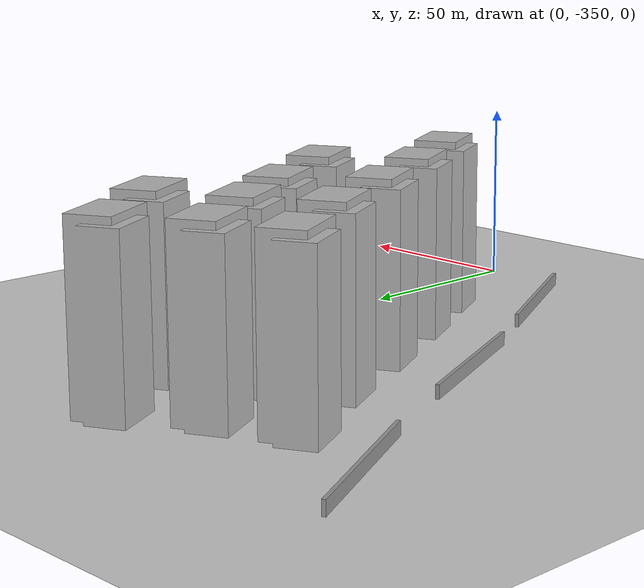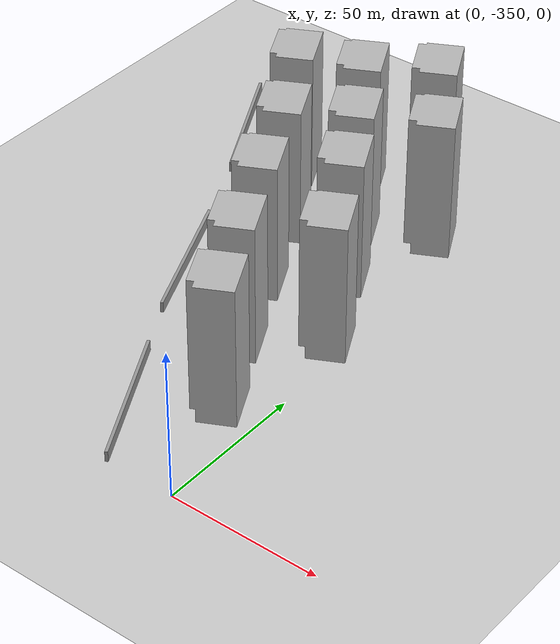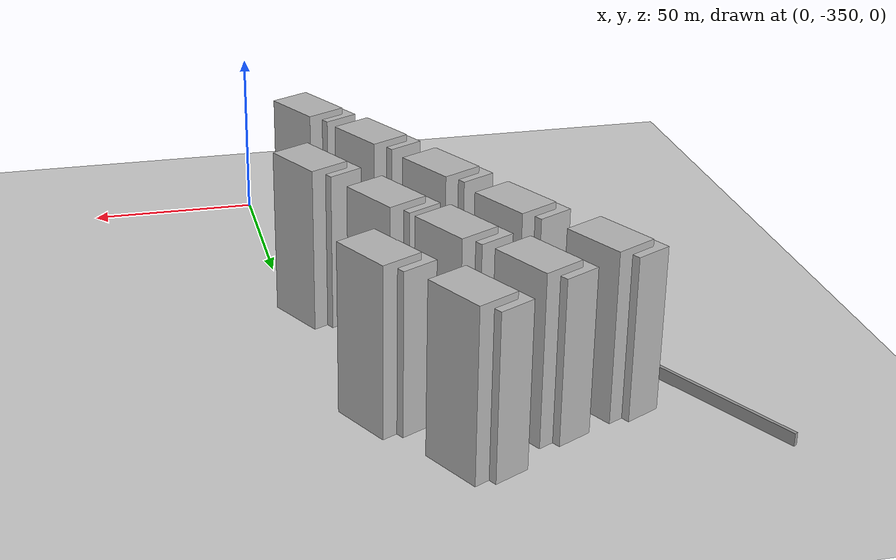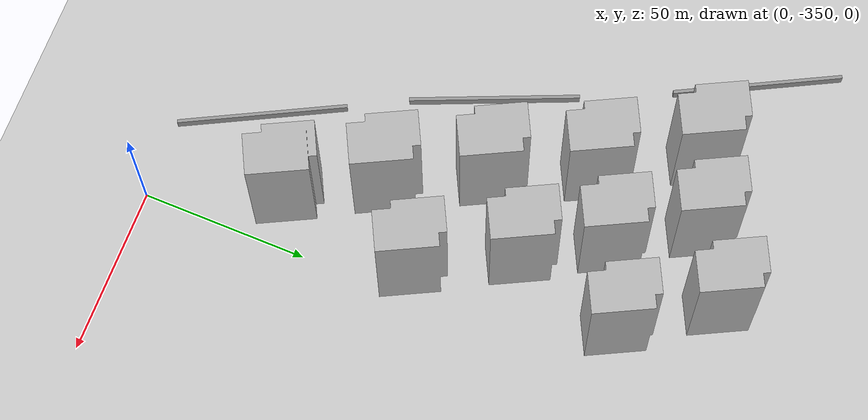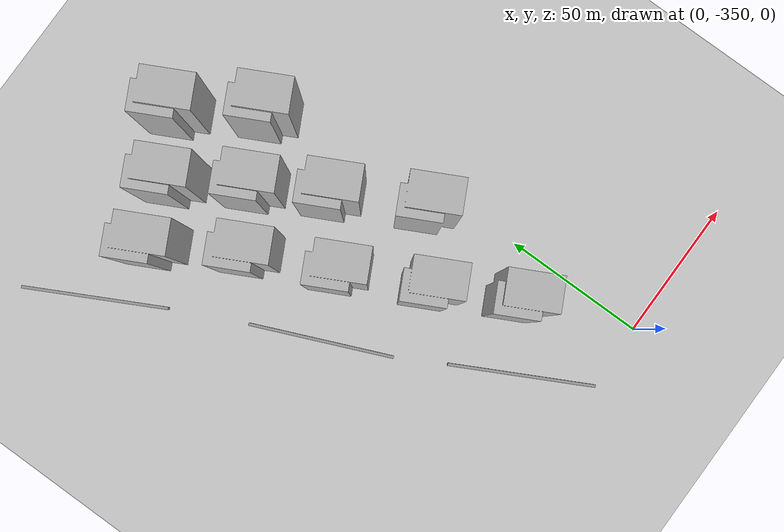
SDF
<sdf version="1.7">
 <world name="default">
  <model name="ground_plane">
   <static>1</static>
   <link name="link">
    <collision name="collision">
     <geometry><plane><normal>0 0 1</normal><size>100 100</size></plane></geometry>
     <surface><friction><ode><mu>100</mu><mu2>50</mu2></ode></friction></surface>
    </collision>
    <visual name="visual">
     <cast_shadows>0</cast_shadows>
     <geometry><plane><normal>0 0 1</normal><size>100 100</size></plane></geometry>
     <material>
      <script><uri>file://media/materials/scripts/gazebo.material</uri><name>Gazebo/Grey</name></script>
     </material>
    </visual>
   </link>
  </model>
  <model name="apartment1_clone_15_clone_3_clone_0_clone_15">
   <static>1</static>
   <link name="link_0">
    <inertial>
     <mass>1</mass>
     <inertia>
      <ixx>0.166667</ixx>
      <ixy>0</ixy>
      <ixz>0</ixz>
      <iyy>0.166667</iyy>
      <iyz>0</iyz>
      <izz>0.166667</izz>
     </inertia>
    </inertial>
    <pose>1e-06 -0 0 0 -0 0</pose>
    <visual name="visual">
     <geometry>
      <mesh><uri>model://apartment1/scripts/apartment1.dae</uri><scale>0.3 0.3 0.4</scale></mesh>
     </geometry>
     <material>
      <lighting>1</lighting>
      <script><uri>model://apartment1/scripts/apartment1.jpg</uri><name>__default__</name></script>
      <shader type="pixel"/>
     </material>
    </visual>
    <collision name="collision">
     <geometry>
      <mesh><uri>model://apartment1/scripts/apartment1.dae</uri><scale>0.3 0.3 0.4</scale></mesh>
     </geometry>
     <surface>
      <friction>
       <ode><mu>1</mu><mu2>1</mu2><fdir1>0 0 0</fdir1><slip1>0</slip1><slip2>0</slip2></ode>
       <torsional>
        <coefficient>1</coefficient>
        <patch_radius>0</patch_radius>
        <surface_radius>0</surface_radius>
        <use_patch_radius>1</use_patch_radius>
        <ode><slip>0</slip></ode>
       </torsional>
      </friction>
      <bounce><restitution_coefficient>0</restitution_coefficient><threshold>1e+06</threshold></bounce>
      <contact>
       <collide_without_contact>0</collide_without_contact>
       <collide_without_contact_bitmask>1</collide_without_contact_bitmask>
       <collide_bitmask>1</collide_bitmask>
       <ode>
        <soft_cfm>0</soft_cfm>
        <soft_erp>0.2</soft_erp>
        <kp>1e+13</kp>
        <kd>1</kd>
        <max_vel>0.01</max_vel>
        <min_depth>0</min_depth>
       </ode>
       <bullet>
        <split_impulse>1</split_impulse>
        <split_impulse_penetration_threshold>-0.01</split_impulse_penetration_threshold>
        <soft_cfm>0</soft_cfm>
        <soft_erp>0.2</soft_erp>
        <kp>1e+13</kp>
        <kd>1</kd>
       </bullet>
      </contact>
     </surface>
    </collision>
   </link>
   <static>0</static>
   <pose>-29.8505 -182.312 0 0 -0 0.473091</pose>
  </model>
  <model name="apartment1_clone_15_clone_3_clone_0_clone_16">
   <static>1</static>
   <link name="link_0">
    <inertial>
     <mass>1</mass>
     <inertia>
      <ixx>0.166667</ixx>
      <ixy>0</ixy>
      <ixz>0</ixz>
      <iyy>0.166667</iyy>
      <iyz>0</iyz>
      <izz>0.166667</izz>
     </inertia>
    </inertial>
    <pose>1e-06 -0 0 0 -0 0</pose>
    <visual name="visual">
     <geometry>
      <mesh><uri>model://apartment1/scripts/apartment1.dae</uri><scale>0.3 0.3 0.4</scale></mesh>
     </geometry>
     <material>
      <lighting>1</lighting>
      <script><uri>model://apartment1/scripts/apartment1.jpg</uri><name>__default__</name></script>
      <shader type="pixel"/>
     </material>
    </visual>
    <collision name="collision">
     <geometry>
      <mesh><uri>model://apartment1/scripts/apartment1.dae</uri><scale>0.3 0.3 0.4</scale></mesh>
     </geometry>
     <surface>
      <friction>
       <ode><mu>1</mu><mu2>1</mu2><fdir1>0 0 0</fdir1><slip1>0</slip1><slip2>0</slip2></ode>
       <torsional>
        <coefficient>1</coefficient>
        <patch_radius>0</patch_radius>
        <surface_radius>0</surface_radius>
        <use_patch_radius>1</use_patch_radius>
        <ode><slip>0</slip></ode>
       </torsional>
      </friction>
      <bounce><restitution_coefficient>0</restitution_coefficient><threshold>1e+06</threshold></bounce>
      <contact>
       <collide_without_contact>0</collide_without_contact>
       <collide_without_contact_bitmask>1</collide_without_contact_bitmask>
       <collide_bitmask>1</collide_bitmask>
       <ode>
        <soft_cfm>0</soft_cfm>
        <soft_erp>0.2</soft_erp>
        <kp>1e+13</kp>
        <kd>1</kd>
        <max_vel>0.01</max_vel>
        <min_depth>0</min_depth>
       </ode>
       <bullet>
        <split_impulse>1</split_impulse>
        <split_impulse_penetration_threshold>-0.01</split_impulse_penetration_threshold>
        <soft_cfm>0</soft_cfm>
        <soft_erp>0.2</soft_erp>
        <kp>1e+13</kp>
        <kd>1</kd>
       </bullet>
      </contact>
     </surface>
    </collision>
   </link>
   <static>0</static>
   <pose>-12.9649 -207.592 0 0 -0 0.473091</pose>
  </model>
  <model name="apartment1_clone_15_clone_3_clone_0_clone_26">
   <static>1</static>
   <link name="link_0">
    <inertial>
     <mass>1</mass>
     <inertia>
      <ixx>0.166667</ixx>
      <ixy>0</ixy>
      <ixz>0</ixz>
      <iyy>0.166667</iyy>
      <iyz>0</iyz>
      <izz>0.166667</izz>
     </inertia>
    </inertial>
    <pose>1e-06 -0 0 0 -0 0</pose>
    <visual name="visual">
     <geometry>
      <mesh><uri>model://apartment1/scripts/apartment1.dae</uri><scale>0.3 0.3 0.4</scale></mesh>
     </geometry>
     <material>
      <lighting>1</lighting>
      <script><uri>model://apartment1/scripts/apartment1.jpg</uri><name>__default__</name></script>
      <shader type="pixel"/>
     </material>
    </visual>
    <collision name="collision">
     <geometry>
      <mesh><uri>model://apartment1/scripts/apartment1.dae</uri><scale>0.3 0.3 0.4</scale></mesh>
     </geometry>
     <surface>
      <friction>
       <ode><mu>1</mu><mu2>1</mu2><fdir1>0 0 0</fdir1><slip1>0</slip1><slip2>0</slip2></ode>
       <torsional>
        <coefficient>1</coefficient>
        <patch_radius>0</patch_radius>
        <surface_radius>0</surface_radius>
        <use_patch_radius>1</use_patch_radius>
        <ode><slip>0</slip></ode>
       </torsional>
      </friction>
      <bounce><restitution_coefficient>0</restitution_coefficient><threshold>1e+06</threshold></bounce>
      <contact>
       <collide_without_contact>0</collide_without_contact>
       <collide_without_contact_bitmask>1</collide_without_contact_bitmask>
       <collide_bitmask>1</collide_bitmask>
       <ode>
        <soft_cfm>0</soft_cfm>
        <soft_erp>0.2</soft_erp>
        <kp>1e+13</kp>
        <kd>1</kd>
        <max_vel>0.01</max_vel>
        <min_depth>0</min_depth>
       </ode>
       <bullet>
        <split_impulse>1</split_impulse>
        <split_impulse_penetration_threshold>-0.01</split_impulse_penetration_threshold>
        <soft_cfm>0</soft_cfm>
        <soft_erp>0.2</soft_erp>
        <kp>1e+13</kp>
        <kd>1</kd>
       </bullet>
      </contact>
     </surface>
    </collision>
   </link>
   <static>0</static>
   <pose>-35.2959 -218.479 0 0 -0 0.473091</pose>
  </model>
  <model name="apartment1_clone_15_clone_3_clone_0_clone_34">
   <static>1</static>
   <link name="link_0">
    <inertial>
     <mass>1</mass>
     <inertia>
      <ixx>0.166667</ixx>
      <ixy>0</ixy>
      <ixz>0</ixz>
      <iyy>0.166667</iyy>
      <iyz>0</iyz>
      <izz>0.166667</izz>
     </inertia>
    </inertial>
    <pose>1e-06 -0 0 0 -0 0</pose>
    <visual name="visual">
     <geometry>
      <mesh><uri>model://apartment1/scripts/apartment1.dae</uri><scale>0.3 0.3 0.4</scale></mesh>
     </geometry>
     <material>
      <lighting>1</lighting>
      <script><uri>model://apartment1/scripts/apartment1.jpg</uri><name>__default__</name></script>
      <shader type="pixel"/>
     </material>
    </visual>
    <collision name="collision">
     <geometry>
      <mesh><uri>model://apartment1/scripts/apartment1.dae</uri><scale>0.3 0.3 0.4</scale></mesh>
     </geometry>
     <surface>
      <friction>
       <ode><mu>1</mu><mu2>1</mu2><fdir1>0 0 0</fdir1><slip1>0</slip1><slip2>0</slip2></ode>
       <torsional>
        <coefficient>1</coefficient>
        <patch_radius>0</patch_radius>
        <surface_radius>0</surface_radius>
        <use_patch_radius>1</use_patch_radius>
        <ode><slip>0</slip></ode>
       </torsional>
      </friction>
      <bounce><restitution_coefficient>0</restitution_coefficient><threshold>1e+06</threshold></bounce>
      <contact>
       <collide_without_contact>0</collide_without_contact>
       <collide_without_contact_bitmask>1</collide_without_contact_bitmask>
       <collide_bitmask>1</collide_bitmask>
       <ode>
        <soft_cfm>0</soft_cfm>
        <soft_erp>0.2</soft_erp>
        <kp>1e+13</kp>
        <kd>1</kd>
        <max_vel>0.01</max_vel>
        <min_depth>0</min_depth>
       </ode>
       <bullet>
        <split_impulse>1</split_impulse>
        <split_impulse_penetration_threshold>-0.01</split_impulse_penetration_threshold>
        <soft_cfm>0</soft_cfm>
        <soft_erp>0.2</soft_erp>
        <kp>1e+13</kp>
        <kd>1</kd>
       </bullet>
      </contact>
     </surface>
    </collision>
   </link>
   <static>0</static>
   <pose>-6.84743 -269.373 0 0 -0 0.473091</pose>
  </model>
  <model name="apartment1_clone_15_clone_3_clone_0_clone_35">
   <static>1</static>
   <link name="link_0">
    <inertial>
     <mass>1</mass>
     <inertia>
      <ixx>0.166667</ixx>
      <ixy>0</ixy>
      <ixz>0</ixz>
      <iyy>0.166667</iyy>
      <iyz>0</iyz>
      <izz>0.166667</izz>
     </inertia>
    </inertial>
    <pose>1e-06 -0 0 0 -0 0</pose>
    <visual name="visual">
     <geometry>
      <mesh><uri>model://apartment1/scripts/apartment1.dae</uri><scale>0.3 0.3 0.4</scale></mesh>
     </geometry>
     <material>
      <lighting>1</lighting>
      <script><uri>model://apartment1/scripts/apartment1.jpg</uri><name>__default__</name></script>
      <shader type="pixel"/>
     </material>
    </visual>
    <collision name="collision">
     <geometry>
      <mesh><uri>model://apartment1/scripts/apartment1.dae</uri><scale>0.3 0.3 0.4</scale></mesh>
     </geometry>
     <surface>
      <friction>
       <ode><mu>1</mu><mu2>1</mu2><fdir1>0 0 0</fdir1><slip1>0</slip1><slip2>0</slip2></ode>
       <torsional>
        <coefficient>1</coefficient>
        <patch_radius>0</patch_radius>
        <surface_radius>0</surface_radius>
        <use_patch_radius>1</use_patch_radius>
        <ode><slip>0</slip></ode>
       </torsional>
      </friction>
      <bounce><restitution_coefficient>0</restitution_coefficient><threshold>1e+06</threshold></bounce>
      <contact>
       <collide_without_contact>0</collide_without_contact>
       <collide_without_contact_bitmask>1</collide_without_contact_bitmask>
       <collide_bitmask>1</collide_bitmask>
       <ode>
        <soft_cfm>0</soft_cfm>
        <soft_erp>0.2</soft_erp>
        <kp>1e+13</kp>
        <kd>1</kd>
        <max_vel>0.01</max_vel>
        <min_depth>0</min_depth>
       </ode>
       <bullet>
        <split_impulse>1</split_impulse>
        <split_impulse_penetration_threshold>-0.01</split_impulse_penetration_threshold>
        <soft_cfm>0</soft_cfm>
        <soft_erp>0.2</soft_erp>
        <kp>1e+13</kp>
        <kd>1</kd>
       </bullet>
      </contact>
     </surface>
    </collision>
   </link>
   <static>0</static>
   <pose>-22.1885 -241.16 0 0 -0 0.473091</pose>
  </model>
  <model name="grey_wall_clone">
   <static>1</static>
   <link name="link">
    <pose>0 0 1.4 0 -0 0</pose>
    <collision name="collision"><geometry><box><size>50.5 1 4</size></box></geometry></collision>
    <visual name="visual">
     <cast_shadows>0</cast_shadows>
     <geometry><box><size>50.5 1 4</size></box></geometry>
     <material>
      <script>
       <uri>model://grey_wall/materials/scripts</uri>
       <uri>model://grey_wall/materials/textures</uri>
       <name>vrc/grey_wall</name>
      </script>
     </material>
    </visual>
   </link>
   <pose>-65.7942 -266.087 0 0 0 -1.16623</pose>
  </model>
  <model name="apartment1_clone_15_clone_3_clone_0_clone_26_clone">
   <static>1</static>
   <link name="link_0">
    <inertial>
     <mass>1</mass>
     <inertia>
      <ixx>0.166667</ixx>
      <ixy>0</ixy>
      <ixz>0</ixz>
      <iyy>0.166667</iyy>
      <iyz>0</iyz>
      <izz>0.166667</izz>
     </inertia>
    </inertial>
    <pose>1e-06 -0 0 0 -0 0</pose>
    <visual name="visual">
     <geometry>
      <mesh><uri>model://apartment1/scripts/apartment1.dae</uri><scale>0.3 0.3 0.4</scale></mesh>
     </geometry>
     <material>
      <lighting>1</lighting>
      <script><uri>model://apartment1/scripts/apartment1.jpg</uri><name>__default__</name></script>
      <shader type="pixel"/>
     </material>
    </visual>
    <collision name="collision">
     <geometry>
      <mesh><uri>model://apartment1/scripts/apartment1.dae</uri><scale>0.3 0.3 0.4</scale></mesh>
     </geometry>
     <surface>
      <friction>
       <ode><mu>1</mu><mu2>1</mu2><fdir1>0 0 0</fdir1><slip1>0</slip1><slip2>0</slip2></ode>
       <torsional>
        <coefficient>1</coefficient>
        <patch_radius>0</patch_radius>
        <surface_radius>0</surface_radius>
        <use_patch_radius>1</use_patch_radius>
        <ode><slip>0</slip></ode>
       </torsional>
      </friction>
      <bounce><restitution_coefficient>0</restitution_coefficient><threshold>1e+06</threshold></bounce>
      <contact>
       <collide_without_contact>0</collide_without_contact>
       <collide_without_contact_bitmask>1</collide_without_contact_bitmask>
       <collide_bitmask>1</collide_bitmask>
       <ode>
        <soft_cfm>0</soft_cfm>
        <soft_erp>0.2</soft_erp>
        <kp>1e+13</kp>
        <kd>1</kd>
        <max_vel>0.01</max_vel>
        <min_depth>0</min_depth>
       </ode>
       <bullet>
        <split_impulse>1</split_impulse>
        <split_impulse_penetration_threshold>-0.01</split_impulse_penetration_threshold>
        <soft_cfm>0</soft_cfm>
        <soft_erp>0.2</soft_erp>
        <kp>1e+13</kp>
        <kd>1</kd>
       </bullet>
      </contact>
     </surface>
    </collision>
   </link>
   <static>0</static>
   <pose>-49.8033 -195.313 0 0 -0 0.473091</pose>
  </model>
  <model name="apartment1_clone_15_clone_3_clone_0_clone_26_clone_clone">
   <static>1</static>
   <link name="link_0">
    <inertial>
     <mass>1</mass>
     <inertia>
      <ixx>0.166667</ixx>
      <ixy>0</ixy>
      <ixz>0</ixz>
      <iyy>0.166667</iyy>
      <iyz>0</iyz>
      <izz>0.166667</izz>
     </inertia>
    </inertial>
    <pose>1e-06 -0 0 0 -0 0</pose>
    <visual name="visual">
     <geometry>
      <mesh><uri>model://apartment1/scripts/apartment1.dae</uri><scale>0.3 0.3 0.4</scale></mesh>
     </geometry>
     <material>
      <lighting>1</lighting>
      <script><uri>model://apartment1/scripts/apartment1.jpg</uri><name>__default__</name></script>
      <shader type="pixel"/>
     </material>
    </visual>
    <collision name="collision">
     <geometry>
      <mesh><uri>model://apartment1/scripts/apartment1.dae</uri><scale>0.3 0.3 0.4</scale></mesh>
     </geometry>
     <surface>
      <friction>
       <ode><mu>1</mu><mu2>1</mu2><fdir1>0 0 0</fdir1><slip1>0</slip1><slip2>0</slip2></ode>
       <torsional>
        <coefficient>1</coefficient>
        <patch_radius>0</patch_radius>
        <surface_radius>0</surface_radius>
        <use_patch_radius>1</use_patch_radius>
        <ode><slip>0</slip></ode>
       </torsional>
      </friction>
      <bounce><restitution_coefficient>0</restitution_coefficient><threshold>1e+06</threshold></bounce>
      <contact>
       <collide_without_contact>0</collide_without_contact>
       <collide_without_contact_bitmask>1</collide_without_contact_bitmask>
       <collide_bitmask>1</collide_bitmask>
       <ode>
        <soft_cfm>0</soft_cfm>
        <soft_erp>0.2</soft_erp>
        <kp>1e+13</kp>
        <kd>1</kd>
        <max_vel>0.01</max_vel>
        <min_depth>0</min_depth>
       </ode>
       <bullet>
        <split_impulse>1</split_impulse>
        <split_impulse_penetration_threshold>-0.01</split_impulse_penetration_threshold>
        <soft_cfm>0</soft_cfm>
        <soft_erp>0.2</soft_erp>
        <kp>1e+13</kp>
        <kd>1</kd>
       </bullet>
      </contact>
     </surface>
    </collision>
   </link>
   <static>0</static>
   <pose>-54.1993 -230.166 0 0 -0 0.473091</pose>
  </model>
  <model name="apartment1_clone_15_clone_3_clone_0_clone_26_clone_clone_0">
   <static>1</static>
   <link name="link_0">
    <inertial>
     <mass>1</mass>
     <inertia>
      <ixx>0.166667</ixx>
      <ixy>0</ixy>
      <ixz>0</ixz>
      <iyy>0.166667</iyy>
      <iyz>0</iyz>
      <izz>0.166667</izz>
     </inertia>
    </inertial>
    <pose>1e-06 -0 0 0 -0 0</pose>
    <visual name="visual">
     <geometry>
      <mesh><uri>model://apartment1/scripts/apartment1.dae</uri><scale>0.3 0.3 0.4</scale></mesh>
     </geometry>
     <material>
      <lighting>1</lighting>
      <script><uri>model://apartment1/scripts/apartment1.jpg</uri><name>__default__</name></script>
      <shader type="pixel"/>
     </material>
    </visual>
    <collision name="collision">
     <geometry>
      <mesh><uri>model://apartment1/scripts/apartment1.dae</uri><scale>0.3 0.3 0.4</scale></mesh>
     </geometry>
     <surface>
      <friction>
       <ode><mu>1</mu><mu2>1</mu2><fdir1>0 0 0</fdir1><slip1>0</slip1><slip2>0</slip2></ode>
       <torsional>
        <coefficient>1</coefficient>
        <patch_radius>0</patch_radius>
        <surface_radius>0</surface_radius>
        <use_patch_radius>1</use_patch_radius>
        <ode><slip>0</slip></ode>
       </torsional>
      </friction>
      <bounce><restitution_coefficient>0</restitution_coefficient><threshold>1e+06</threshold></bounce>
      <contact>
       <collide_without_contact>0</collide_without_contact>
       <collide_without_contact_bitmask>1</collide_without_contact_bitmask>
       <collide_bitmask>1</collide_bitmask>
       <ode>
        <soft_cfm>0</soft_cfm>
        <soft_erp>0.2</soft_erp>
        <kp>1e+13</kp>
        <kd>1</kd>
        <max_vel>0.01</max_vel>
        <min_depth>0</min_depth>
       </ode>
       <bullet>
        <split_impulse>1</split_impulse>
        <split_impulse_penetration_threshold>-0.01</split_impulse_penetration_threshold>
        <soft_cfm>0</soft_cfm>
        <soft_erp>0.2</soft_erp>
        <kp>1e+13</kp>
        <kd>1</kd>
       </bullet>
      </contact>
     </surface>
    </collision>
   </link>
   <static>0</static>
   <pose>-41.2362 -258.128 0 0 -0 0.473091</pose>
  </model>
  <model name="apartment1_clone_15_clone_3_clone_0_clone_26_clone_clone_1">
   <static>1</static>
   <link name="link_0">
    <inertial>
     <mass>1</mass>
     <inertia>
      <ixx>0.166667</ixx>
      <ixy>0</ixy>
      <ixz>0</ixz>
      <iyy>0.166667</iyy>
      <iyz>0</iyz>
      <izz>0.166667</izz>
     </inertia>
    </inertial>
    <pose>1e-06 -0 0 0 -0 0</pose>
    <visual name="visual">
     <geometry>
      <mesh><uri>model://apartment1/scripts/apartment1.dae</uri><scale>0.3 0.3 0.4</scale></mesh>
     </geometry>
     <material>
      <lighting>1</lighting>
      <script><uri>model://apartment1/scripts/apartment1.jpg</uri><name>__default__</name></script>
      <shader type="pixel"/>
     </material>
    </visual>
    <collision name="collision">
     <geometry>
      <mesh><uri>model://apartment1/scripts/apartment1.dae</uri><scale>0.3 0.3 0.4</scale></mesh>
     </geometry>
     <surface>
      <friction>
       <ode><mu>1</mu><mu2>1</mu2><fdir1>0 0 0</fdir1><slip1>0</slip1><slip2>0</slip2></ode>
       <torsional>
        <coefficient>1</coefficient>
        <patch_radius>0</patch_radius>
        <surface_radius>0</surface_radius>
        <use_patch_radius>1</use_patch_radius>
        <ode><slip>0</slip></ode>
       </torsional>
      </friction>
      <bounce><restitution_coefficient>0</restitution_coefficient><threshold>1e+06</threshold></bounce>
      <contact>
       <collide_without_contact>0</collide_without_contact>
       <collide_without_contact_bitmask>1</collide_without_contact_bitmask>
       <collide_bitmask>1</collide_bitmask>
       <ode>
        <soft_cfm>0</soft_cfm>
        <soft_erp>0.2</soft_erp>
        <kp>1e+13</kp>
        <kd>1</kd>
        <max_vel>0.01</max_vel>
        <min_depth>0</min_depth>
       </ode>
       <bullet>
        <split_impulse>1</split_impulse>
        <split_impulse_penetration_threshold>-0.01</split_impulse_penetration_threshold>
        <soft_cfm>0</soft_cfm>
        <soft_erp>0.2</soft_erp>
        <kp>1e+13</kp>
        <kd>1</kd>
       </bullet>
      </contact>
     </surface>
    </collision>
   </link>
   <static>0</static>
   <pose>-27.4593 -285.722 0 0 -0 0.473091</pose>
  </model>
  <model name="apartment1_clone_15_clone_3_clone_0_clone_26_clone_clone_2">
   <static>1</static>
   <link name="link_0">
    <inertial>
     <mass>1</mass>
     <inertia>
      <ixx>0.166667</ixx>
      <ixy>0</ixy>
      <ixz>0</ixz>
      <iyy>0.166667</iyy>
      <iyz>0</iyz>
      <izz>0.166667</izz>
     </inertia>
    </inertial>
    <pose>1e-06 -0 0 0 -0 0</pose>
    <visual name="visual">
     <geometry>
      <mesh><uri>model://apartment1/scripts/apartment1.dae</uri><scale>0.3 0.3 0.4</scale></mesh>
     </geometry>
     <material>
      <lighting>1</lighting>
      <script><uri>model://apartment1/scripts/apartment1.jpg</uri><name>__default__</name></script>
      <shader type="pixel"/>
     </material>
    </visual>
    <collision name="collision">
     <geometry>
      <mesh><uri>model://apartment1/scripts/apartment1.dae</uri><scale>0.3 0.3 0.4</scale></mesh>
     </geometry>
     <surface>
      <friction>
       <ode><mu>1</mu><mu2>1</mu2><fdir1>0 0 0</fdir1><slip1>0</slip1><slip2>0</slip2></ode>
       <torsional>
        <coefficient>1</coefficient>
        <patch_radius>0</patch_radius>
        <surface_radius>0</surface_radius>
        <use_patch_radius>1</use_patch_radius>
        <ode><slip>0</slip></ode>
       </torsional>
      </friction>
      <bounce><restitution_coefficient>0</restitution_coefficient><threshold>1e+06</threshold></bounce>
      <contact>
       <collide_without_contact>0</collide_without_contact>
       <collide_without_contact_bitmask>1</collide_without_contact_bitmask>
       <collide_bitmask>1</collide_bitmask>
       <ode>
        <soft_cfm>0</soft_cfm>
        <soft_erp>0.2</soft_erp>
        <kp>1e+13</kp>
        <kd>1</kd>
        <max_vel>0.01</max_vel>
        <min_depth>0</min_depth>
       </ode>
       <bullet>
        <split_impulse>1</split_impulse>
        <split_impulse_penetration_threshold>-0.01</split_impulse_penetration_threshold>
        <soft_cfm>0</soft_cfm>
        <soft_erp>0.2</soft_erp>
        <kp>1e+13</kp>
        <kd>1</kd>
       </bullet>
      </contact>
     </surface>
    </collision>
   </link>
   <static>0</static>
   <pose>-13.6175 -311.425 0 0 -0 0.473091</pose>
  </model>
  <model name="grey_wall_clone_clone">
   <static>1</static>
   <link name="link">
    <pose>0 0 1.4 0 -0 0</pose>
    <collision name="collision"><geometry><box><size>50.5 1 4</size></box></geometry></collision>
    <visual name="visual">
     <cast_shadows>0</cast_shadows>
     <geometry><box><size>50.5 1 4</size></box></geometry>
     <material>
      <script>
       <uri>model://grey_wall/materials/scripts</uri>
       <uri>model://grey_wall/materials/textures</uri>
       <name>vrc/grey_wall</name>
      </script>
     </material>
    </visual>
   </link>
   <pose>-99.3119 -195.244 0 0 0 -1.08861</pose>
  </model>
  <model name="apartment1_clone_15_clone_3_clone_0_clone_26_clone_clone_clone">
   <static>1</static>
   <link name="link_0">
    <inertial>
     <mass>1</mass>
     <inertia>
      <ixx>0.166667</ixx>
      <ixy>0</ixy>
      <ixz>0</ixz>
      <iyy>0.166667</iyy>
      <iyz>0</iyz>
      <izz>0.166667</izz>
     </inertia>
    </inertial>
    <pose>1e-06 -0 0 0 -0 0</pose>
    <visual name="visual">
     <geometry>
      <mesh><uri>model://apartment1/scripts/apartment1.dae</uri><scale>0.3 0.3 0.4</scale></mesh>
     </geometry>
     <material>
      <lighting>1</lighting>
      <script><uri>model://apartment1/scripts/apartment1.jpg</uri><name>__default__</name></script>
      <shader type="pixel"/>
     </material>
    </visual>
    <collision name="collision">
     <geometry>
      <mesh><uri>model://apartment1/scripts/apartment1.dae</uri><scale>0.3 0.3 0.4</scale></mesh>
     </geometry>
     <surface>
      <friction>
       <ode><mu>1</mu><mu2>1</mu2><fdir1>0 0 0</fdir1><slip1>0</slip1><slip2>0</slip2></ode>
       <torsional>
        <coefficient>1</coefficient>
        <patch_radius>0</patch_radius>
        <surface_radius>0</surface_radius>
        <use_patch_radius>1</use_patch_radius>
        <ode><slip>0</slip></ode>
       </torsional>
      </friction>
      <bounce><restitution_coefficient>0</restitution_coefficient><threshold>1e+06</threshold></bounce>
      <contact>
       <collide_without_contact>0</collide_without_contact>
       <collide_without_contact_bitmask>1</collide_without_contact_bitmask>
       <collide_bitmask>1</collide_bitmask>
       <ode>
        <soft_cfm>0</soft_cfm>
        <soft_erp>0.2</soft_erp>
        <kp>1e+13</kp>
        <kd>1</kd>
        <max_vel>0.01</max_vel>
        <min_depth>0</min_depth>
       </ode>
       <bullet>
        <split_impulse>1</split_impulse>
        <split_impulse_penetration_threshold>-0.01</split_impulse_penetration_threshold>
        <soft_cfm>0</soft_cfm>
        <soft_erp>0.2</soft_erp>
        <kp>1e+13</kp>
        <kd>1</kd>
       </bullet>
      </contact>
     </surface>
    </collision>
   </link>
   <static>0</static>
   <pose>-70.6212 -202.966 0 0 -0 0.473091</pose>
  </model>
  <model name="grey_wall_clone_clone_0">
   <static>1</static>
   <link name="link">
    <pose>0 0 1.4 0 -0 0</pose>
    <collision name="collision"><geometry><box><size>50.5 1 4</size></box></geometry></collision>
    <visual name="visual">
     <cast_shadows>0</cast_shadows>
     <geometry><box><size>50.5 1 4</size></box></geometry>
     <material>
      <script>
       <uri>model://grey_wall/materials/scripts</uri>
       <uri>model://grey_wall/materials/textures</uri>
       <name>vrc/grey_wall</name>
      </script>
     </material>
    </visual>
   </link>
   <pose>-35.228 -327.911 0 0 0 -1.08861</pose>
  </model>
 </world>
</sdf>
